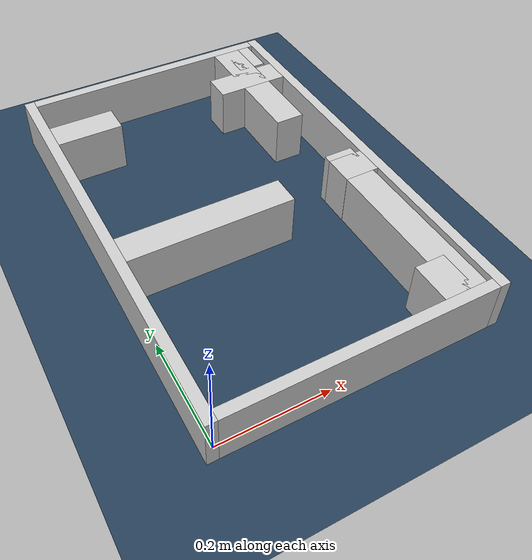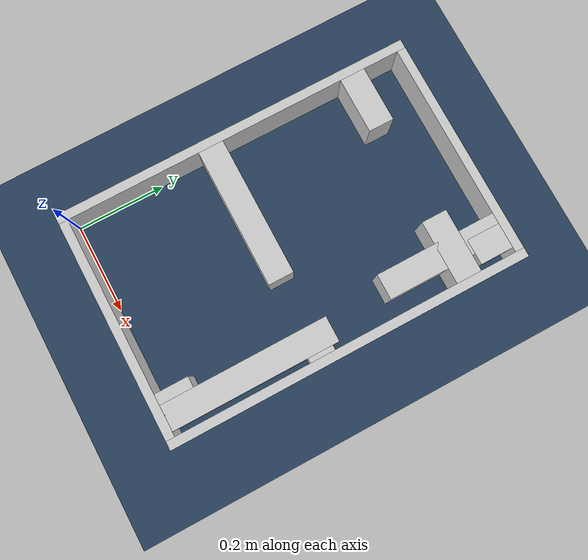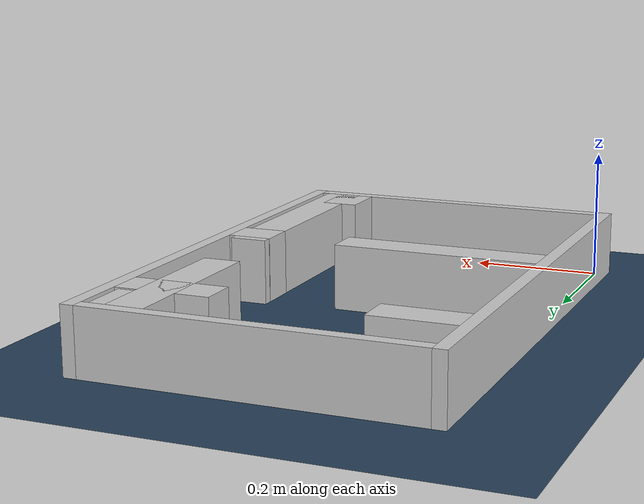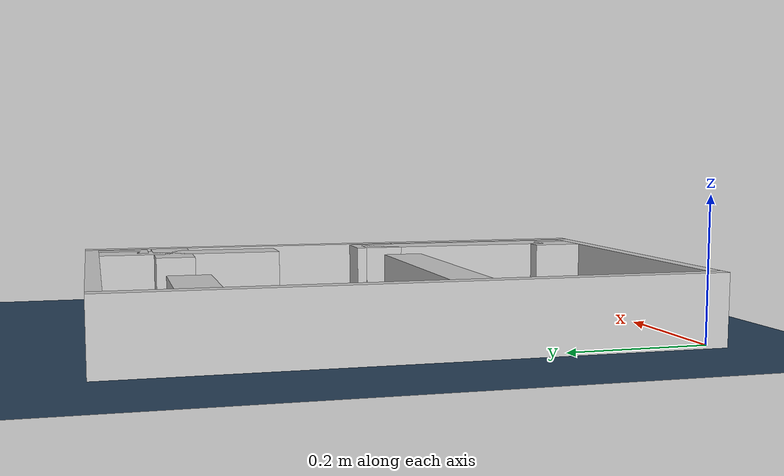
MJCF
<?xml version="1.0" ?>
<mujoco model="generated_real_template">
  <compiler angle="degree"/>
  <option timestep="0.002" integrator="implicitfast" iterations="100" cone="elliptic"/>
  <default>
    <geom density="1"/>
  </default>
  <asset>
    <texture builtin="gradient" height="3072" rgb1="0.3 0.5 0.7" rgb2="0 0 0" type="skybox" width="512"/>
    <texture builtin="checker" height="300" mark="edge" markrgb="0.8 0.8 0.8" name="groundplane" rgb1="0.2 0.3 0.4" rgb2="0.1 0.2 0.3" type="2d" width="300"/>
    <material name="groundplane" reflectance="0.2" texrepeat="5 5" texture="groundplane" texuniform="true"/>
  </asset>
  <worldbody>
    <light dir="0 0 -1" directional="true" pos="0 0 1.5"/>
    <geom name="floor" type="plane" condim="4" friction="0.5 0.005 0.001" material="groundplane" size="0 0 0.05"/>
    <body name="walls">
      <geom name="wall_boundary_left" type="box" condim="4" friction="1.0 0.005 0.0001" rgba="0.8 0.8 0.8 1" pos="-0.010000 0.387500 0.050000" euler="0 0 0.000000" size="0.010000 0.407500 0.050000"/>
      <geom name="wall_boundary_right" type="box" condim="4" friction="1.0 0.005 0.0001" rgba="0.8 0.8 0.8 1" pos="0.500000 0.387500 0.050000" euler="0 0 0.000000" size="0.010000 0.407500 0.050000"/>
      <geom name="wall_boundary_bottom" type="box" condim="4" friction="1.0 0.005 0.0001" rgba="0.8 0.8 0.8 1" pos="0.245000 -0.010000 0.050000" euler="0 0 0.000000" size="0.245000 0.010000 0.050000"/>
      <geom name="wall_boundary_top" type="box" condim="4" friction="1.0 0.005 0.0001" rgba="0.8 0.8 0.8 1" pos="0.245000 0.785000 0.050000" euler="0 0 0.000000" size="0.245000 0.010000 0.050000"/>
      <geom name="wall_inner_1_1" type="box" condim="4" friction="1.0 0.005 0.0001" rgba="0.8 0.8 0.8 1" pos="0.450765 0.186371 0.050000" euler="0 0 90.000000" size="0.186371 0.028500 0.050000"/>
      <geom name="wall_inner_1_2" type="box" condim="4" friction="1.0 0.005 0.0001" rgba="0.8 0.8 0.8 1" pos="0.450765 0.737882 0.050000" euler="0 0 90.000000" size="0.037118 0.028500 0.050000"/>
      <geom name="wall_inner_2_1" type="box" condim="4" friction="1.0 0.005 0.0001" rgba="0.8 0.8 0.8 1" pos="0.426460 0.037614 0.050000" euler="0 0 90.000000" size="0.037614 0.028500 0.050000"/>
      <geom name="wall_inner_2_2" type="box" condim="4" friction="1.0 0.005 0.0001" rgba="0.8 0.8 0.8 1" pos="0.426460 0.639447 0.050000" euler="0 0 90.000000" size="0.135553 0.028500 0.050000"/>
      <geom name="wall_inner_3_1" type="box" condim="4" friction="1.0 0.005 0.0001" rgba="0.8 0.8 0.8 1" pos="0.156625 0.329169 0.050000" euler="0 0 0.000000" size="0.156625 0.028500 0.050000"/>
      <geom name="wall_inner_3_2" type="box" condim="4" friction="1.0 0.005 0.0001" rgba="0.8 0.8 0.8 1" pos="0.455974 0.329169 0.050000" euler="0 0 0.000000" size="0.034026 0.028500 0.050000"/>
      <geom name="wall_inner_4_1" type="box" condim="4" friction="1.0 0.005 0.0001" rgba="0.8 0.8 0.8 1" pos="0.063359 0.666050 0.050000" euler="0 0 0.000000" size="0.063359 0.028500 0.050000"/>
      <geom name="wall_inner_4_2" type="box" condim="4" friction="1.0 0.005 0.0001" rgba="0.8 0.8 0.8 1" pos="0.418489 0.666050 0.050000" euler="0 0 0.000000" size="0.071511 0.028500 0.050000"/>
    </body>
  </worldbody>
</mujoco>
